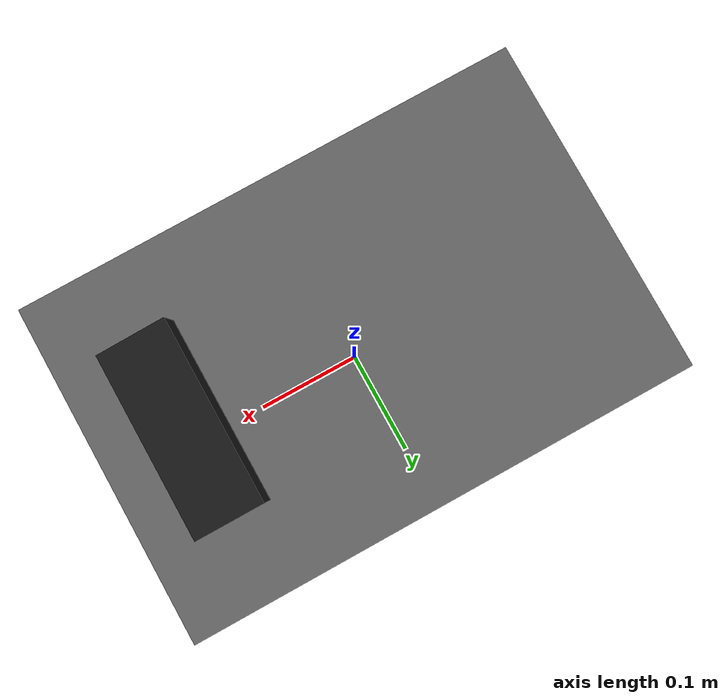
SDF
<?xml version="1.0" ?>
<sdf version="1.9">
  <model name="rassor_astra">

    <!-- ── Chassis ──────────────────────────────────────────────────────── -->
    <link name="base_link">
      <pose>0 0 0.1  0 0 0</pose>
      <inertial>
        <mass>10.0</mass>
        <inertia>
          <ixx>0.083</ixx><ixy>0</ixy><ixz>0</ixz>
          <iyy>0.083</iyy><iyz>0</iyz>
          <izz>0.083</izz>
        </inertia>
      </inertial>
      <collision name="chassis_col">
        <geometry><box><size>0.45 0.30 0.15</size></box></geometry>
      </collision>
      <visual name="chassis_vis">
        <geometry><box><size>0.45 0.30 0.15</size></box></geometry>
        <material>
          <ambient>0.4 0.4 0.4 1</ambient>
          <diffuse>0.4 0.4 0.4 1</diffuse>
        </material>
      </visual>
    </link>

    <!-- ── Camera link ──────────────────────────────────────────────────── -->
    <link name="camera_link">
      <pose>0.15 0 0.20  0 0.087 0</pose>
      <inertial>
        <mass>0.1</mass>
        <inertia>
          <ixx>1e-4</ixx><ixy>0</ixy><ixz>0</ixz>
          <iyy>1e-4</iyy><iyz>0</iyz>
          <izz>1e-4</izz>
        </inertia>
      </inertial>
      <collision name="cam_col">
        <geometry><box><size>0.06 0.16 0.03</size></box></geometry>
      </collision>
      <visual name="cam_vis">
        <geometry><box><size>0.06 0.16 0.03</size></box></geometry>
        <material>
          <ambient>0.1 0.1 0.1 1</ambient>
          <diffuse>0.1 0.1 0.1 1</diffuse>
        </material>
      </visual>

      <!-- ── Astra Pro RGB sensor ──────────────────────────────────────── -->
      <!-- Required by rtabmap rgbd_odometry for visual feature matching.  -->
      <!-- ros_gz_bridge maps the Gz topic to /camera/color/image_raw.     -->
      <sensor name="astra_color" type="camera">
        <always_on>true</always_on>
        <update_rate>30</update_rate>
        <camera name="color">
          <!-- 60° HFOV: fx = 320 / tan(30°) ≈ 554 -->
          <horizontal_fov>1.0472</horizontal_fov>
          <image>
            <width>640</width>
            <height>480</height>
            <format>RGB_INT8</format>
          </image>
          <clip>
            <near>0.1</near>
            <far>100.0</far>
          </clip>
        </camera>
        <!-- Gz topic name (no leading slash = relative to world namespace) -->
        <topic>camera/color/image_raw</topic>
        <!-- frame_id written into the published CameraInfo -->
        <gz_frame_id>camera_color_optical_frame</gz_frame_id>
        <visualize>false</visualize>
      </sensor>

      <!-- ── Astra Pro depth sensor ────────────────────────────────────── -->
      <!-- ros_gz_bridge maps the Gz topic to /camera/depth/image_raw and  -->
      <!-- /camera/depth/points.                                            -->
      <sensor name="astra_depth" type="depth_camera">
        <always_on>true</always_on>
        <update_rate>30</update_rate>
        <camera name="depth">
          <horizontal_fov>1.0472</horizontal_fov>
          <image>
            <width>640</width>
            <height>480</height>
            <!-- R_FLOAT32 → bridged as 32FC1 sensor_msgs/Image -->
            <format>R_FLOAT32</format>
          </image>
          <clip>
            <near>0.3</near>
            <far>8.0</far>
          </clip>
          <noise>
            <type>gaussian</type>
            <mean>0.0</mean>
            <stddev>0.005</stddev>
          </noise>
        </camera>
        <topic>camera/depth/image_raw</topic>
        <gz_frame_id>camera_depth_optical_frame</gz_frame_id>
        <visualize>false</visualize>
      </sensor>
    </link>

    <!-- ── Joints ───────────────────────────────────────────────────────── -->
    <joint name="chassis_to_camera" type="fixed">
      <parent>base_link</parent>
      <child>camera_link</child>
    </joint>

  </model>
</sdf>
